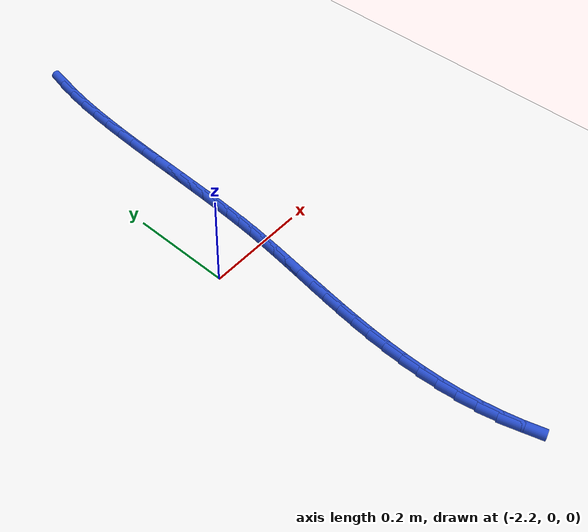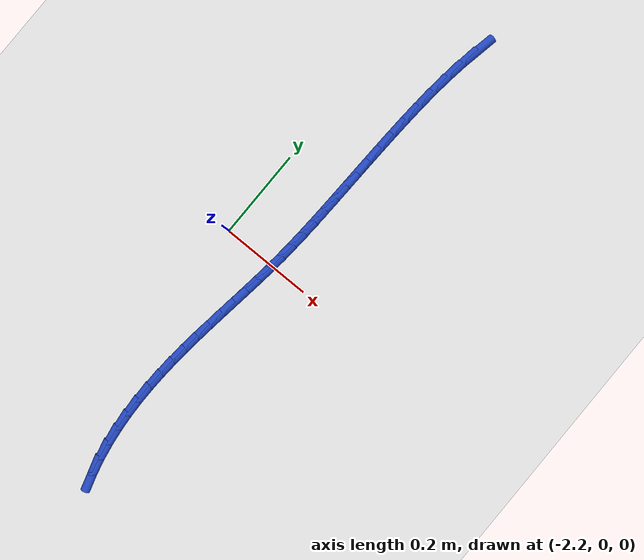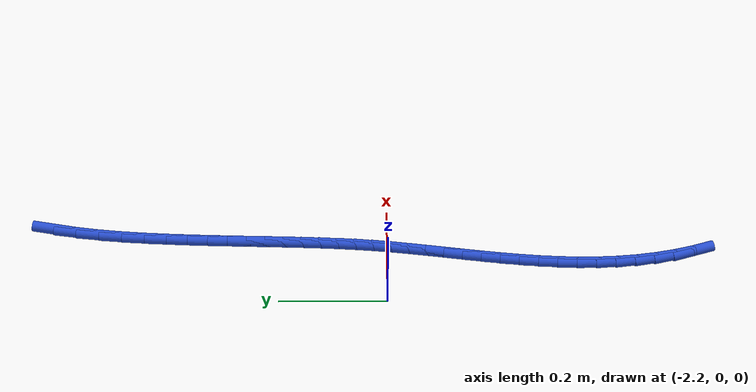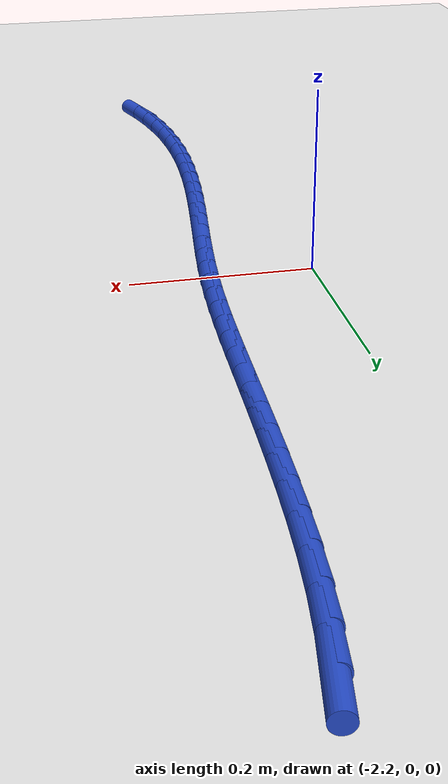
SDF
<sdf version="1.6">
 <world name="default">
  <model name="ground_plane">
   <static>1</static>
   <link name="link">
    <collision name="collision">
     <geometry><plane><normal>0 0 1</normal><size>100 100</size></plane></geometry>
     <surface><friction><ode><mu>100</mu><mu2>50</mu2></ode></friction></surface>
    </collision>
    <visual name="visual">
     <cast_shadows>0</cast_shadows>
     <geometry><plane><normal>0 0 1</normal><size>100 100</size></plane></geometry>
     <material>
      <script><uri>file://media/materials/scripts/gazebo.material</uri><name>Gazebo/WhiteGlow</name></script>
     </material>
    </visual>
   </link>
  </model>
  <model name="line">
   <link name="link_82">
    <pose>-2.0401976883098696 0.6200894233055723 0.01 0 1.57 1.383699633677969</pose>
    <collision name="collision">
     <geometry><cylinder><radius>0.01</radius><length>0.08</length></cylinder></geometry>
    </collision>
    <visual name="visual">
     <material>
      <script><name>Gazebo/Blue</name><uri>file://media/materials/scripts/gazebo.material</uri></script>
     </material>
     <geometry><cylinder><radius>0.01</radius><length>0.08</length></cylinder></geometry>
    </visual>
   </link>
   <link name="link_83">
    <pose>-2.047862437241766 0.5796017796818549 0.01 0 1.57 1.4278896099275253</pose>
    <collision name="collision">
     <geometry><cylinder><radius>0.01</radius><length>0.08</length></cylinder></geometry>
    </collision>
    <visual name="visual">
     <material>
      <script><name>Gazebo/Blue</name><uri>file://media/materials/scripts/gazebo.material</uri></script>
     </material>
     <geometry><cylinder><radius>0.01</radius><length>0.08</length></cylinder></geometry>
    </visual>
   </link>
   <link name="link_84">
    <pose>-2.0538825111624144 0.5377630415465713 0.01 0 1.57 1.4623376880475933</pose>
    <collision name="collision">
     <geometry><cylinder><radius>0.01</radius><length>0.08</length></cylinder></geometry>
    </collision>
    <visual name="visual">
     <material>
      <script><name>Gazebo/Blue</name><uri>file://media/materials/scripts/gazebo.material</uri></script>
     </material>
     <geometry><cylinder><radius>0.01</radius><length>0.08</length></cylinder></geometry>
    </visual>
   </link>
   <link name="link_85">
    <pose>-2.058514949127161 0.49521908616030835 0.01 0 1.57 1.4887842101779662</pose>
    <collision name="collision">
     <geometry><cylinder><radius>0.01</radius><length>0.08</length></cylinder></geometry>
    </collision>
    <visual name="visual">
     <material>
      <script><name>Gazebo/Blue</name><uri>file://media/materials/scripts/gazebo.material</uri></script>
     </material>
     <geometry><cylinder><radius>0.01</radius><length>0.08</length></cylinder></geometry>
    </visual>
   </link>
   <link name="link_86">
    <pose>-2.0620167901913544 0.45261579078365416 0.01 0 1.57 1.508324511038931</pose>
    <collision name="collision">
     <geometry><cylinder><radius>0.01</radius><length>0.08</length></cylinder></geometry>
    </collision>
    <visual name="visual">
     <material>
      <script><name>Gazebo/Blue</name><uri>file://media/materials/scripts/gazebo.material</uri></script>
     </material>
     <geometry><cylinder><radius>0.01</radius><length>0.08</length></cylinder></geometry>
    </visual>
   </link>
   <link name="link_87">
    <pose>-2.064645073410341 0.4105990326771965 0.01 0 1.57 1.5215134993705914</pose>
    <collision name="collision">
     <geometry><cylinder><radius>0.01</radius><length>0.08</length></cylinder></geometry>
    </collision>
    <visual name="visual">
     <material>
      <script><name>Gazebo/Blue</name><uri>file://media/materials/scripts/gazebo.material</uri></script>
     </material>
     <geometry><cylinder><radius>0.01</radius><length>0.08</length></cylinder></geometry>
    </visual>
   </link>
   <link name="link_88">
    <pose>-2.066656705561827 0.36981396864295896 0.01 0 1.57 1.529659619882897</pose>
    <collision name="collision">
     <geometry><cylinder><radius>0.01</radius><length>0.08</length></cylinder></geometry>
    </collision>
    <visual name="visual">
     <material>
      <script><name>Gazebo/Blue</name><uri>file://media/materials/scripts/gazebo.material</uri></script>
     </material>
     <geometry><cylinder><radius>0.01</radius><length>0.08</length></cylinder></geometry>
    </visual>
   </link>
   <link name="link_89">
    <pose>-2.06826739960626 0.33068139074468483 0.01 0 1.57 1.5355439157680062</pose>
    <collision name="collision">
     <geometry><cylinder><radius>0.01</radius><length>0.08</length></cylinder></geometry>
    </collision>
    <visual name="visual">
     <material>
      <script><name>Gazebo/Blue</name><uri>file://media/materials/scripts/gazebo.material</uri></script>
     </material>
     <geometry><cylinder><radius>0.01</radius><length>0.08</length></cylinder></geometry>
    </visual>
   </link>
   <link name="link_90">
    <pose>-2.069593464623456 0.29308068150585725 0.01 0 1.57 1.539291254137535</pose>
    <collision name="collision">
     <geometry><cylinder><radius>0.01</radius><length>0.08</length></cylinder></geometry>
    </collision>
    <visual name="visual">
     <material>
      <script><name>Gazebo/Blue</name><uri>file://media/materials/scripts/gazebo.material</uri></script>
     </material>
     <geometry><cylinder><radius>0.01</radius><length>0.08</length></cylinder></geometry>
    </visual>
   </link>
   <link name="link_91">
    <pose>-2.0707365157396893 0.2568111919000939 0.01 0 1.57 1.5405925096576758</pose>
    <collision name="collision">
     <geometry><cylinder><radius>0.01</radius><length>0.08</length></cylinder></geometry>
    </collision>
    <visual name="visual">
     <material>
      <script><name>Gazebo/Blue</name><uri>file://media/materials/scripts/gazebo.material</uri></script>
     </material>
     <geometry><cylinder><radius>0.01</radius><length>0.08</length></cylinder></geometry>
    </visual>
   </link>
   <link name="link_92">
    <pose>-2.0717981680812354 0.22167227290101216 0.01 0 1.57 1.5391815964222875</pose>
    <collision name="collision">
     <geometry><cylinder><radius>0.01</radius><length>0.08</length></cylinder></geometry>
    </collision>
    <visual name="visual">
     <material>
      <script><name>Gazebo/Blue</name><uri>file://media/materials/scripts/gazebo.material</uri></script>
     </material>
     <geometry><cylinder><radius>0.01</radius><length>0.08</length></cylinder></geometry>
    </visual>
   </link>
   <link name="link_93">
    <pose>-2.072880036774371 0.18746327548222982 0.01 0 1.57 1.534858697885927</pose>
    <collision name="collision">
     <geometry><cylinder><radius>0.01</radius><length>0.08</length></cylinder></geometry>
    </collision>
    <visual name="visual">
     <material>
      <script><name>Gazebo/Blue</name><uri>file://media/materials/scripts/gazebo.material</uri></script>
     </material>
     <geometry><cylinder><radius>0.01</radius><length>0.08</length></cylinder></geometry>
    </visual>
   </link>
   <link name="link_94">
    <pose>-2.0740837369453704 0.15398355061736446 0.01 0 1.57 1.5275123286698455</pose>
    <collision name="collision">
     <geometry><cylinder><radius>0.01</radius><length>0.08</length></cylinder></geometry>
    </collision>
    <visual name="visual">
     <material>
      <script><name>Gazebo/Blue</name><uri>file://media/materials/scripts/gazebo.material</uri></script>
     </material>
     <geometry><cylinder><radius>0.01</radius><length>0.08</length></cylinder></geometry>
    </visual>
   </link>
   <link name="link_95">
    <pose>-2.0755108837205105 0.12103244928003366 0.01 0 1.57 1.5171372620792496</pose>
    <collision name="collision">
     <geometry><cylinder><radius>0.01</radius><length>0.08</length></cylinder></geometry>
    </collision>
    <visual name="visual">
     <material>
      <script><name>Gazebo/Blue</name><uri>file://media/materials/scripts/gazebo.material</uri></script>
     </material>
     <geometry><cylinder><radius>0.01</radius><length>0.08</length></cylinder></geometry>
    </visual>
   </link>
   <link name="link_96">
    <pose>-2.0772630922260658 0.08840932244385541 0.01 0 1.57 1.5038452525357255</pose>
    <collision name="collision">
     <geometry><cylinder><radius>0.01</radius><length>0.08</length></cylinder></geometry>
    </collision>
    <visual name="visual">
     <material>
      <script><name>Gazebo/Blue</name><uri>file://media/materials/scripts/gazebo.material</uri></script>
     </material>
     <geometry><cylinder><radius>0.01</radius><length>0.08</length></cylinder></geometry>
    </visual>
   </link>
   <link name="link_97">
    <pose>-2.079441977588313 0.055913521082446585 0.01 0 1.57 1.4878659946121886</pose>
    <collision name="collision">
     <geometry><cylinder><radius>0.01</radius><length>0.08</length></cylinder></geometry>
    </collision>
    <visual name="visual">
     <material>
      <script><name>Gazebo/Blue</name><uri>file://media/materials/scripts/gazebo.material</uri></script>
     </material>
     <geometry><cylinder><radius>0.01</radius><length>0.08</length></cylinder></geometry>
    </visual>
   </link>
   <link name="link_98">
    <pose>-2.0821491549335267 0.023344396169425193 0.01 0 1.57 1.4696816759591598</pose>
    <collision name="collision">
     <geometry><cylinder><radius>0.01</radius><length>0.08</length></cylinder></geometry>
    </collision>
    <visual name="visual">
     <material>
      <script><name>Gazebo/Blue</name><uri>file://media/materials/scripts/gazebo.material</uri></script>
     </material>
     <geometry><cylinder><radius>0.01</radius><length>0.08</length></cylinder></geometry>
    </visual>
   </link>
   <link name="link_99">
    <pose>-2.08548101008316 -0.009494487422445158 0.01 0 1.57 1.4532253126435881</pose>
    <collision name="collision">
     <geometry><cylinder><radius>0.01</radius><length>0.08</length></cylinder></geometry>
    </collision>
    <visual name="visual">
     <material>
      <script><name>Gazebo/Blue</name><uri>file://media/materials/scripts/gazebo.material</uri></script>
     </material>
     <geometry><cylinder><radius>0.01</radius><length>0.08</length></cylinder></geometry>
    </visual>
   </link>
   <link name="link_100">
    <pose>-2.089402339619579 -0.04269352705803272 0.01 0 1.57 1.4421831461740544</pose>
    <collision name="collision">
     <geometry><cylinder><radius>0.01</radius><length>0.08</length></cylinder></geometry>
    </collision>
    <visual name="visual">
     <material>
      <script><name>Gazebo/Blue</name><uri>file://media/materials/scripts/gazebo.material</uri></script>
     </material>
     <geometry><cylinder><radius>0.01</radius><length>0.08</length></cylinder></geometry>
    </visual>
   </link>
   <link name="link_101">
    <pose>-2.093739739668924 -0.0762317548626275 0.01 0 1.57 1.4365029680152466</pose>
    <collision name="collision">
     <geometry><cylinder><radius>0.01</radius><length>0.08</length></cylinder></geometry>
    </collision>
    <visual name="visual">
     <material>
      <script><name>Gazebo/Blue</name><uri>file://media/materials/scripts/gazebo.material</uri></script>
     </material>
     <geometry><cylinder><radius>0.01</radius><length>0.08</length></cylinder></geometry>
    </visual>
   </link>
   <link name="link_102">
    <pose>-2.098313253812983 -0.11008292276424929 0.01 0 1.57 1.436001759033096</pose>
    <collision name="collision">
     <geometry><cylinder><radius>0.01</radius><length>0.08</length></cylinder></geometry>
    </collision>
    <visual name="visual">
     <material>
      <script><name>Gazebo/Blue</name><uri>file://media/materials/scripts/gazebo.material</uri></script>
     </material>
     <geometry><cylinder><radius>0.01</radius><length>0.08</length></cylinder></geometry>
    </visual>
   </link>
   <link name="link_103">
    <pose>-2.1029429256335423 -0.14422078269091781 0.01 0 1.57 1.4405467772967917</pose>
    <collision name="collision">
     <geometry><cylinder><radius>0.01</radius><length>0.08</length></cylinder></geometry>
    </collision>
    <visual name="visual">
     <material>
      <script><name>Gazebo/Blue</name><uri>file://media/materials/scripts/gazebo.material</uri></script>
     </material>
     <geometry><cylinder><radius>0.01</radius><length>0.08</length></cylinder></geometry>
    </visual>
   </link>
   <link name="link_104">
    <pose>-2.1074487987123875 -0.1786190865706528 0.01 0 1.57 1.450052028244347</pose>
    <collision name="collision">
     <geometry><cylinder><radius>0.01</radius><length>0.08</length></cylinder></geometry>
    </collision>
    <visual name="visual">
     <material>
      <script><name>Gazebo/Blue</name><uri>file://media/materials/scripts/gazebo.material</uri></script>
     </material>
     <geometry><cylinder><radius>0.01</radius><length>0.08</length></cylinder></geometry>
    </visual>
   </link>
   <link name="link_105">
    <pose>-2.1116509166313073 -0.2132515863314741 0.01 0 1.57 1.464472096514102</pose>
    <collision name="collision">
     <geometry><cylinder><radius>0.01</radius><length>0.08</length></cylinder></geometry>
    </collision>
    <visual name="visual">
     <material>
      <script><name>Gazebo/Blue</name><uri>file://media/materials/scripts/gazebo.material</uri></script>
     </material>
     <geometry><cylinder><radius>0.01</radius><length>0.08</length></cylinder></geometry>
    </visual>
   </link>
   <link name="link_106">
    <pose>-2.115369322972086 -0.24809203390140125 0.01 0 1.57 1.483793470730205</pose>
    <collision name="collision">
     <geometry><cylinder><radius>0.01</radius><length>0.08</length></cylinder></geometry>
    </collision>
    <visual name="visual">
     <material>
      <script><name>Gazebo/Blue</name><uri>file://media/materials/scripts/gazebo.material</uri></script>
     </material>
     <geometry><cylinder><radius>0.01</radius><length>0.08</length></cylinder></geometry>
    </visual>
   </link>
   <link name="link_107">
    <pose>-2.1184240613165137 -0.2831141812084544 0.01 0 1.57 1.5080231712695937</pose>
    <collision name="collision">
     <geometry><cylinder><radius>0.01</radius><length>0.08</length></cylinder></geometry>
    </collision>
    <visual name="visual">
     <material>
      <script><name>Gazebo/Blue</name><uri>file://media/materials/scripts/gazebo.material</uri></script>
     </material>
     <geometry><cylinder><radius>0.01</radius><length>0.08</length></cylinder></geometry>
    </visual>
   </link>
   <link name="link_108">
    <pose>-2.120635175246375 -0.31829178018065285 0.01 0 1.57 1.5371743191636102</pose>
    <collision name="collision">
     <geometry><cylinder><radius>0.01</radius><length>0.08</length></cylinder></geometry>
    </collision>
    <visual name="visual">
     <material>
      <script><name>Gazebo/Blue</name><uri>file://media/materials/scripts/gazebo.material</uri></script>
     </material>
     <geometry><cylinder><radius>0.01</radius><length>0.08</length></cylinder></geometry>
    </visual>
   </link>
   <link name="link_109">
    <pose>-2.1218227083434567 -0.3535985827460167 0.01 0 1.57 -1.570344356669012</pose>
    <collision name="collision">
     <geometry><cylinder><radius>0.01</radius><length>0.08</length></cylinder></geometry>
    </collision>
    <visual name="visual">
     <material>
      <script><name>Gazebo/Blue</name><uri>file://media/materials/scripts/gazebo.material</uri></script>
     </material>
     <geometry><cylinder><radius>0.01</radius><length>0.08</length></cylinder></geometry>
    </visual>
   </link>
   <link name="link_110">
    <pose>-2.121806704189547 -0.38900834083256547 0.01 0 1.57 -1.5313792441409628</pose>
    <collision name="collision">
     <geometry><cylinder><radius>0.01</radius><length>0.08</length></cylinder></geometry>
    </collision>
    <visual name="visual">
     <material>
      <script><name>Gazebo/Blue</name><uri>file://media/materials/scripts/gazebo.material</uri></script>
     </material>
     <geometry><cylinder><radius>0.01</radius><length>0.08</length></cylinder></geometry>
    </visual>
   </link>
   <link name="link_111">
    <pose>-2.120407206366431 -0.424494806368319 0.01 0 1.57 -1.4876124193373483</pose>
    <collision name="collision">
     <geometry><cylinder><radius>0.01</radius><length>0.08</length></cylinder></geometry>
    </collision>
    <visual name="visual">
     <material>
      <script><name>Gazebo/Blue</name><uri>file://media/materials/scripts/gazebo.material</uri></script>
     </material>
     <geometry><cylinder><radius>0.01</radius><length>0.08</length></cylinder></geometry>
    </visual>
   </link>
   <link name="link_112">
    <pose>-2.1174442714894037 -0.46003169976190705 0.01 0 1.57 -1.4396116294872547</pose>
    <collision name="collision">
     <geometry><cylinder><radius>0.01</radius><length>0.08</length></cylinder></geometry>
    </collision>
    <visual name="visual">
     <material>
      <script><name>Gazebo/Blue</name><uri>file://media/materials/scripts/gazebo.material</uri></script>
     </material>
     <geometry><cylinder><radius>0.01</radius><length>0.08</length></cylinder></geometry>
    </visual>
   </link>
   <link name="link_113">
    <pose>-2.1127589635140267 -0.49554193862792534 0.01 0 1.57 -1.388379664075361</pose>
    <collision name="collision">
     <geometry><cylinder><radius>0.01</radius><length>0.08</length></cylinder></geometry>
    </collision>
    <visual name="visual">
     <material>
      <script><name>Gazebo/Blue</name><uri>file://media/materials/scripts/gazebo.material</uri></script>
     </material>
     <geometry><cylinder><radius>0.01</radius><length>0.08</length></cylinder></geometry>
    </visual>
   </link>
   <link name="link_114">
    <pose>-2.106256031023749 -0.530794429792723 0.01 0 1.57 -1.333415021343759</pose>
    <collision name="collision">
     <geometry><cylinder><radius>0.01</radius><length>0.08</length></cylinder></geometry>
    </collision>
    <visual name="visual">
     <material>
      <script><name>Gazebo/Blue</name><uri>file://media/materials/scripts/gazebo.material</uri></script>
     </material>
     <geometry><cylinder><radius>0.01</radius><length>0.08</length></cylinder></geometry>
    </visual>
   </link>
   <link name="link_115">
    <pose>-2.0978522450570587 -0.5655290057543833 0.01 0 1.57 -1.2739199748770464</pose>
    <collision name="collision">
     <geometry><cylinder><radius>0.01</radius><length>0.08</length></cylinder></geometry>
    </collision>
    <visual name="visual">
     <material>
      <script><name>Gazebo/Blue</name><uri>file://media/materials/scripts/gazebo.material</uri></script>
     </material>
     <geometry><cylinder><radius>0.01</radius><length>0.08</length></cylinder></geometry>
    </visual>
   </link>
  </model>
 </world>
</sdf>
